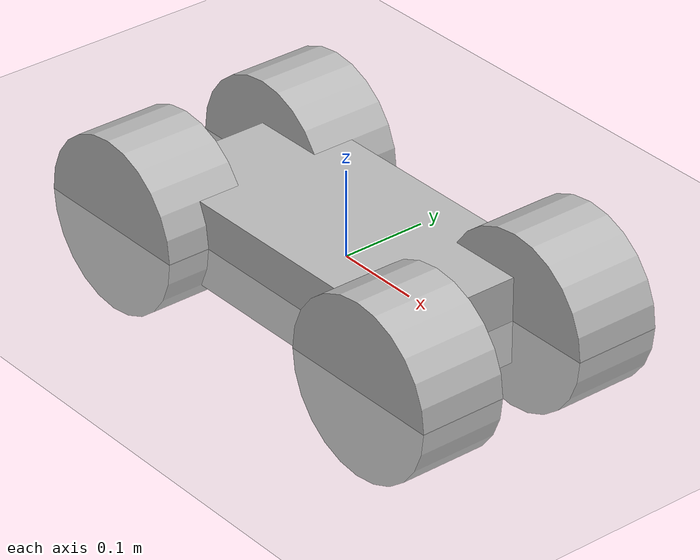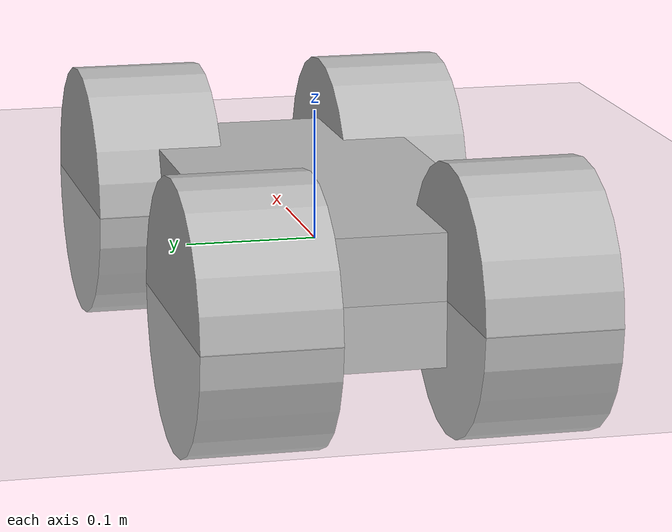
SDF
<?xml version="1.0" ?>

<sdf version="1.5">

  <world name="default">

    <!-- 地板-->
    <include>
      <uri>model://ground_plane</uri>
    </include>

    <!-- 光線-->
    <include>
      <uri>model://sun</uri>
    </include>

    <model name="carcar">

      <link name="body_link">
        <pose>0 0 0 0 0 0</pose>

        <visual name="body_visual">
          <geometry>
            <box>
              <size>.4 .2 .1</size>
            </box>
          </geometry>
        </visual>

        <collision name="body_collision">
          <geometry>
            <box>
              <size>.4 .2 .1</size>
            </box>
          </geometry>
        </collision>

        <inertial>
          <inertia>
            <ixx>1</ixx>
            <ixy>0</ixy>
            <ixz>0</ixz>
            <iyy>1</iyy>
            <iyz>0</iyz>
            <izz>1</izz>
          </inertia>
          <mass>10</mass>
        </inertial>

      </link>

      <link name="left_wheel_link">
        <pose>0.2 0.1 0 1.57079632679 0 0</pose>
        <visual name="left_wheel_visual">
          <geometry>
            <cylinder>
              <radius>0.1</radius>
              <length>0.1</length>
            </cylinder>
          </geometry>
        </visual>
        <collision name="left_wheel_collision">
          <geometry>
            <cylinder>
              <radius>0.1</radius>
              <length>0.1</length>
            </cylinder>
          </geometry>

          <surface>
            <friction>
              <ode>
                <mu>1.0</mu>
                <mu2>1.0</mu2>
              </ode>
            </friction>
          </surface>
        </collision>

        <inertial>
          <inertia>
            <ixx>0</ixx>
            <ixy>0</ixy>
            <ixz>0</ixz>
            <iyy>1</iyy>
            <iyz>0</iyz>
            <izz>0</izz>
          </inertia>
          <mass>10</mass>
        </inertial>
      </link>

      <link name="right_wheel_link">
        <pose>0.2 -0.1 0 1.57079632679 0 0</pose>
        <visual name="right_wheel_visual">
          <geometry>
            <cylinder>
              <radius>0.1</radius>
              <length>0.1</length>
            </cylinder>
          </geometry>
        </visual>
        <collision name="right_wheel_collision">
          <geometry>
            <cylinder>
              <radius>0.1</radius>
              <length>0.1</length>
            </cylinder>
          </geometry>

          <surface>
            <friction>
              <ode>
                <mu>1.0</mu>
                <mu2>1.0</mu2>
              </ode>
            </friction>
          </surface>
        </collision>

        <inertial>
          <inertia>
            <ixx>0</ixx>
            <ixy>0</ixy>
            <ixz>0</ixz>
            <iyy>1</iyy>
            <iyz>0</iyz>
            <izz>0</izz>
          </inertia>
          <mass>10</mass>
        </inertial>
      </link>

      <joint name="robot_car_left_wheel_joint" type="revolute">
        <pose>0 0 0 0 0 0</pose>
        <axis>
          <xyz>0 0 1</xyz>
        </axis>
        <child>left_wheel_link</child>
        <parent>body_link</parent>
      </joint>

      <joint name="robot_car_right_wheel_joint" type="revolute">
        <pose>0 0 0 0 0 0</pose>
        <axis>
          <xyz>0 0 1</xyz>
        </axis>

        <child>right_wheel_link</child>
        <parent>body_link</parent>
      </joint>

      <link name="left_wheel_back_link">
        <pose>-0.2 0.1 0 1.57079632679 0 0</pose>
        <visual name="left_wheel_back_visual">
          <geometry>
            <cylinder>
              <radius>0.1</radius>
              <length>0.1</length>
            </cylinder>
          </geometry>
        </visual>
        <collision name="left_wheel_back_collision">
          <geometry>
            <cylinder>
              <radius>0.1</radius>
              <length>0.1</length>
            </cylinder>
          </geometry>

          <surface>
            <friction>
              <ode>
                <mu>1.0</mu>
                <mu2>1.0</mu2>
              </ode>
            </friction>
          </surface>

        </collision>

        <inertial>
          <inertia>
            <ixx>0</ixx>
            <ixy>0</ixy>
            <ixz>0</ixz>
            <iyy>1</iyy>
            <iyz>0</iyz>
            <izz>0</izz>
          </inertia>
          <mass>10</mass>
        </inertial>
      </link>

      <link name="right_wheel_back_link">
        <pose>-0.2 -0.1 0 1.57079632679 0 0</pose>
        <visual name="right_wheel_back_visual">
          <geometry>
            <cylinder>
              <radius>0.1</radius>
              <length>0.1</length>
            </cylinder>
          </geometry>
        </visual>
        <collision name="right_wheel_back_collision">
          <geometry>
            <cylinder>
              <radius>0.1</radius>
              <length>0.1</length>
            </cylinder>
          </geometry>

          <surface>
            <friction>
              <ode>
                <mu>1.0</mu>
                <mu2>1.0</mu2>
              </ode>
            </friction>
          </surface>
        </collision>

        <inertial>
          <inertia>
            <ixx>0</ixx>
            <ixy>0</ixy>
            <ixz>0</ixz>
            <iyy>1</iyy>
            <iyz>0</iyz>
            <izz>0</izz>
          </inertia>
          <mass>10</mass>
        </inertial>
      </link>

      <joint name="robot_car_left_wheel_back_joint" type="revolute">
        <pose>0 0 0 0 0 0</pose>
        <axis>
          <xyz>0 0 1</xyz>
        </axis>
        <child>left_wheel_back_link</child>
        <parent>body_link</parent>
      </joint>

      <joint name="robot_car_right_wheel_back_joint" type="revolute">
        <pose>0 0 0 0 0 0</pose>
        <axis>
          <xyz>0 0 1</xyz>
        </axis>

        <child>right_wheel_back_link</child>
        <parent>body_link</parent>
      </joint>

    </model>

  </world>
</sdf>
